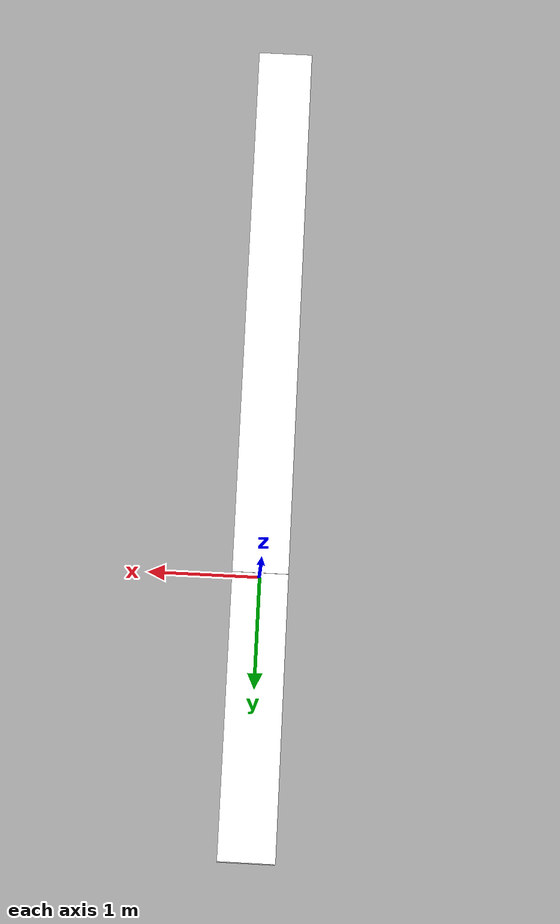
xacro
<?xml version="1.0"?>
<robot name="chipsy_conveyor" xmlns:xacro="http://ros.org/wiki/xacro">

  <!-- DEFINING GENERIC PROPERTIES THAT ARE USED IN THE XACRO FILE -->

  <!-- along x axis -->
  <xacro:property name="base_length" value="0.5"/>
  <!-- along y axis -->
  <xacro:property name="base_width" value="5"/>
  <!-- along z axis -->
  <xacro:property name="base_height" value="0.25"/>
  <xacro:property name="base_mass" value="5"/>

  <!-- along x axis -->
  <xacro:property name="belt_length" value="0.5"/>
  <!-- along y axis -->
  <xacro:property name="belt_width" value="5"/>
  <!-- along z axis -->
  <xacro:property name="belt_height" value="0.005"/>
  <xacro:property name="belt_mass" value="2.5"/>

  <!-- Set the limit of the belt and base joint -->
  <xacro:property name="belt_limit" value="5"/>

  <xacro:property name="PI" value="3.141592653589793238"/>

  <!-- COLOURS FOR MATERIAL -->
  <material name="white">
    <color rgba="1 1 1 1"/>
  </material>

  <material name="black">
    <color rgba ="0 0 0 1"/>
  </material>

  <material name="green">
    <color rgba="0 1 0 1"/>
  </material>

  <!-- MACROS FOR INERTIAL PROPERTIES -->
  <xacro:macro name="base_inertial">
    <inertial>
      <mass value="${base_mass}" />
      <inertia ixx="${(1/12)*base_mass*((base_width*base_width)+(base_height*base_height))}"
        ixy="0.0"
        ixz="0.0"
        iyy="${(1/12)*base_mass*((base_height*base_height)+(base_length*base_length))}"
        iyz="0.0"
        izz="${(1/12)*base_mass*((base_width*base_width)+(base_length*base_length))}" />
    </inertial>
  </xacro:macro>

  <xacro:macro name="belt_inertial">
    <inertial>
      <mass value="${belt_mass}" />
      <inertia ixx="${(1/12)*belt_mass*((belt_width*belt_width)+(belt_height*belt_height))}"
        ixy="0.0"
        ixz="0.0"
        iyy="${(1/12)*belt_mass*((belt_height*belt_height)+(belt_length*belt_length))}"
        iyz="0.0"
        izz="${(1/12)*belt_mass*((belt_width*belt_width)+(belt_length*belt_length))}" />
    </inertial>
  </xacro:macro>

  <!-- DUMMY ROOT LINK SO THAT BASE LINK CAN BE GIVEN SOME MASS -->
  <link name="root_link"/>

  <!-- BASE LINK. MAIN BOX TO WHICH WHEEL AND EVERYTHING ELSE IS TO BE ATTACHED -->
  <link name="base_link">
    <visual>
      <origin xyz="0 0 ${base_height/2}" rpy="0 0 0"/>
      <geometry>
        <box size="${base_length} ${base_width} ${base_height}"/>
      </geometry>
      <material name="white"/>
    </visual>
    <collision>
      <origin xyz="0 0 ${base_height/2}" rpy="0 0 0"/>
      <geometry>
        <box size="${base_length} ${base_width} ${base_height}"/>
      </geometry>
    </collision>
    <xacro:base_inertial/>
  </link>

  <!-- CONNECT BASE LINK TO ROOT LINK -->
  <joint name="base_to_root_joint" type="fixed">
    <parent link="root_link"/>
    <child link="base_link"/>
  </joint>

  <!-- BELT LINK IS THE MOVING PORTION -->
  <link name="belt_link">
    <visual>
      <origin xyz="0 ${-base_width/2} ${belt_height/2}" rpy="0 0 0"/>
      <geometry>
        <box size="${belt_length} ${belt_width} ${belt_height}"/>
      </geometry>
      <material name="white"/>
    </visual>
    <collision>
      <origin xyz="0 ${-base_width/2} ${belt_height/2}" rpy="0 0 0"/>
      <geometry>
        <box size="${belt_length} ${belt_width} ${belt_height}"/>
      </geometry>
    </collision>
    <xacro:belt_inertial/>
  </link>

  <!-- CONNECT THE BELT TO BASE -->
  <joint name="belt_to_base_joint" type="prismatic">
    <origin xyz="0 0 ${base_height}" rpy="0 0 0"/>
    <limit upper="${belt_limit}" lower="${-1*belt_limit}" effort="20" velocity="1"/>
    <axis xyz="0 1 0" rpy="0 0 0"/>
    <parent link="base_link"/>
    <child link="belt_link"/>
  </joint>

  <!-- GIVE COLOUR TO BELT -->
  <gazebo reference="belt_link">
    <material>Gazebo/Blue</material>
  </gazebo>

  <!-- TESTING THE CUSTOM CONVEYOR BELT PLUGIN -->
  <gazebo>
    <plugin name="ConveyorBeltPlugin" filename="/home/raghav/chipsy/devel/lib/libConveyorBeltPlugin.so">
    <belt_joint>belt_to_base_joint</belt_joint>
  </plugin>
  </gazebo>

  <!-- JOINT STATE PUBLISHER -->
  <gazebo>
    <plugin name="joint_state_publisher" filename="libgazebo_ros_joint_state_publisher.so">
      <jointName>belt_to_base_joint</jointName>
    </plugin>
  </gazebo>

</robot>
